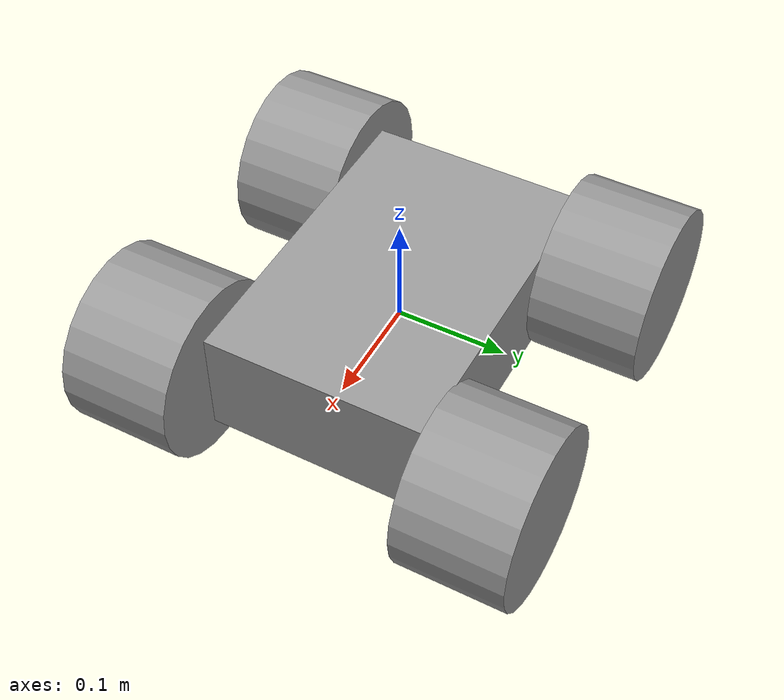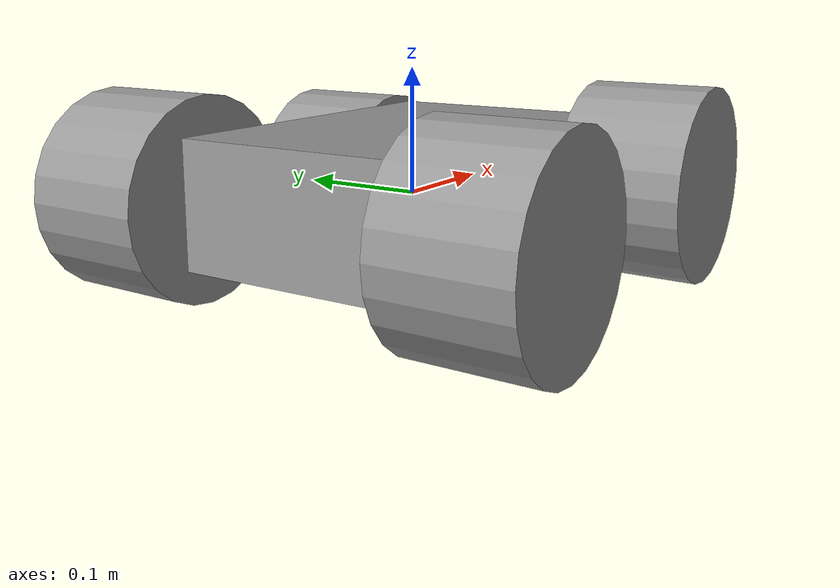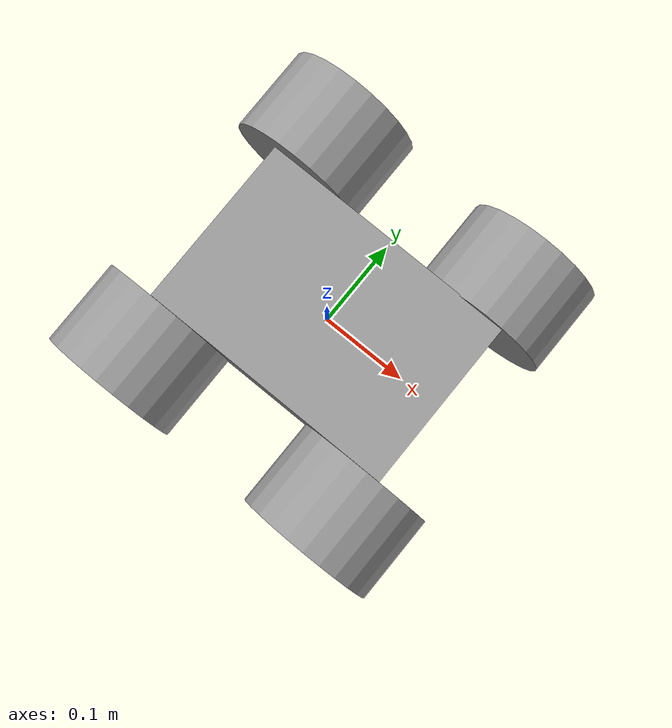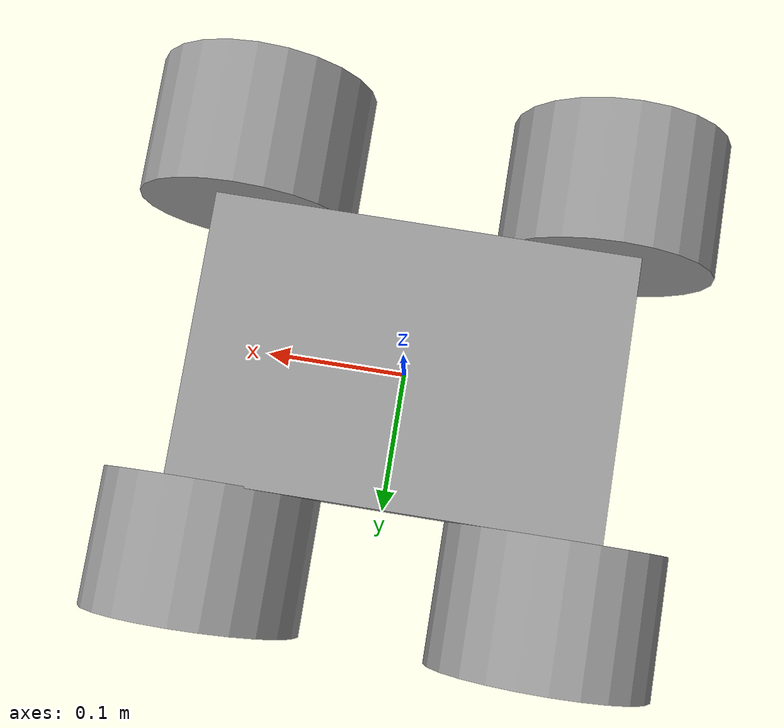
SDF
<?xml version='1.0'?>
<sdf version='1.6'>
  <model name='model_robot'>

    <link name='link_body'>
      <pose frame=''>-0.001376 0.000254 0.004397 0 -0 0</pose>
      <inertial>
        <mass>1</mass>
        <inertia>
          <ixx>0.166667</ixx>
          <ixy>0</ixy>
          <ixz>0</ixz>
          <iyy>0.166667</iyy>
          <iyz>0</iyz>
          <izz>0.166667</izz>
        </inertia>
        <pose frame=''>0 0 0 0 -0 0</pose>
      </inertial>
      <gravity>1</gravity>
      <self_collide>0</self_collide>
      <kinematic>0</kinematic>
      <visual name='visual'>
        <pose frame=''>0 0 0 0 -0 0</pose>
        <geometry>
          <box>
            <size>0.3 0.2 0.1</size>
          </box>
        </geometry>
        <material>
          <lighting>1</lighting>
          <script>
            <uri>file://media/materials/scripts/gazebo.material</uri>
            <name>Gazebo/Grey</name>
          </script>
          <ambient>0.3 0.3 0.3 1</ambient>
          <diffuse>0.7 0.7 0.7 1</diffuse>
          <specular>0.01 0.01 0.01 1</specular>
          <emissive>0 0 0 1</emissive>
          <shader type='vertex'>
            <normal_map>__default__</normal_map>
          </shader>
        </material>
        <cast_shadows>1</cast_shadows>
        <transparency>0</transparency>
      </visual>
      <collision name='collision'>
        <laser_retro>0</laser_retro>
        <max_contacts>10</max_contacts>
        <pose frame=''>0 0 0 0 -0 0</pose>
        <geometry>
          <box>
            <size>0.3 0.2 0.1</size>
          </box>
        </geometry>
        <surface>
          <friction>
            <ode>
              <mu>1</mu>
              <mu2>1</mu2>
              <fdir1>0 0 0</fdir1>
              <slip1>0</slip1>
              <slip2>0</slip2>
            </ode>
            <torsional>
              <coefficient>1</coefficient>
              <patch_radius>0</patch_radius>
              <surface_radius>0</surface_radius>
              <use_patch_radius>1</use_patch_radius>
              <ode>
                <slip>0</slip>
              </ode>
            </torsional>
          </friction>
          <bounce>
            <restitution_coefficient>0</restitution_coefficient>
            <threshold>1e+06</threshold>
          </bounce>
          <contact>
            <collide_without_contact>0</collide_without_contact>
            <collide_without_contact_bitmask>1</collide_without_contact_bitmask>
            <collide_bitmask>1</collide_bitmask>
            <ode>
              <soft_cfm>0</soft_cfm>
              <soft_erp>0.2</soft_erp>
              <kp>1e+13</kp>
              <kd>1</kd>
              <max_vel>0.01</max_vel>
              <min_depth>0</min_depth>
            </ode>
            <bullet>
              <split_impulse>1</split_impulse>
              <split_impulse_penetration_threshold>-0.01</split_impulse_penetration_threshold>
              <soft_cfm>0</soft_cfm>
              <soft_erp>0.2</soft_erp>
              <kp>1e+13</kp>
              <kd>1</kd>
            </bullet>
          </contact>
        </surface>
      </collision>
    </link>

    <link name='link_left_front_wheel'>
      <pose frame=''>-0.125241 0.150709 0.004397 1.5765 -0 0</pose>
      <inertial>
        <mass>1</mass>
        <inertia>
          <ixx>0.145833</ixx>
          <ixy>0</ixy>
          <ixz>0</ixz>
          <iyy>0.145833</iyy>
          <iyz>0</iyz>
          <izz>0.125</izz>
        </inertia>
        <pose frame=''>0 0 0 0 -0 0</pose>
      </inertial>
      <gravity>1</gravity>
      <self_collide>0</self_collide>
      <kinematic>0</kinematic>
      <visual name='visual'>
        <pose frame=''>0 0 0 0 -0 0</pose>
        <geometry>
          <cylinder>
            <radius>0.08</radius>
            <length>0.1</length>
          </cylinder>
        </geometry>
        <material>
          <lighting>1</lighting>
          <script>
            <uri>file://media/materials/scripts/gazebo.material</uri>
            <name>Gazebo/Grey</name>
          </script>
          <ambient>0.3 0.3 0.3 1</ambient>
          <diffuse>0.7 0.7 0.7 1</diffuse>
          <specular>0.01 0.01 0.01 1</specular>
          <emissive>0 0 0 1</emissive>
          <shader type='vertex'>
            <normal_map>__default__</normal_map>
          </shader>
        </material>
        <cast_shadows>1</cast_shadows>
        <transparency>0</transparency>
      </visual>
      <collision name='collision'>
        <laser_retro>0</laser_retro>
        <max_contacts>10</max_contacts>
        <pose frame=''>0 0 0 0 -0 0</pose>
        <geometry>
          <cylinder>
            <radius>0.08</radius>
            <length>0.1</length>
          </cylinder>
        </geometry>
        <surface>
          <friction>
            <ode>
              <mu>1</mu>
              <mu2>1</mu2>
              <fdir1>0 0 0</fdir1>
              <slip1>0</slip1>
              <slip2>0</slip2>
            </ode>
            <torsional>
              <coefficient>1</coefficient>
              <patch_radius>0</patch_radius>
              <surface_radius>0</surface_radius>
              <use_patch_radius>1</use_patch_radius>
              <ode>
                <slip>0</slip>
              </ode>
            </torsional>
          </friction>
          <bounce>
            <restitution_coefficient>0</restitution_coefficient>
            <threshold>1e+06</threshold>
          </bounce>
          <contact>
            <collide_without_contact>0</collide_without_contact>
            <collide_without_contact_bitmask>1</collide_without_contact_bitmask>
            <collide_bitmask>1</collide_bitmask>
            <ode>
              <soft_cfm>0</soft_cfm>
              <soft_erp>0.2</soft_erp>
              <kp>1e+13</kp>
              <kd>1</kd>
              <max_vel>0.01</max_vel>
              <min_depth>0</min_depth>
            </ode>
            <bullet>
              <split_impulse>1</split_impulse>
              <split_impulse_penetration_threshold>-0.01</split_impulse_penetration_threshold>
              <soft_cfm>0</soft_cfm>
              <soft_erp>0.2</soft_erp>
              <kp>1e+13</kp>
              <kd>1</kd>
            </bullet>
          </contact>
        </surface>
      </collision>
    </link>

    <link name='link_right_front_wheel'>
      <pose frame=''>0.126124 0.149444 -0.017586 1.5765 -0 0</pose>
      <inertial>
        <mass>1</mass>
        <inertia>
          <ixx>0.145833</ixx>
          <ixy>0</ixy>
          <ixz>0</ixz>
          <iyy>0.145833</iyy>
          <iyz>0</iyz>
          <izz>0.125</izz>
        </inertia>
        <pose frame=''>0 0 0 0 -0 0</pose>
      </inertial>
      <self_collide>0</self_collide>
      <kinematic>0</kinematic>
      <gravity>1</gravity>
      <visual name='visual'>
        <pose frame=''>0 0 0 0 -0 0</pose>
        <geometry>
          <cylinder>
            <radius>0.08</radius>
            <length>0.1</length>
          </cylinder>
        </geometry>
        <material>
          <lighting>1</lighting>
          <script>
            <uri>file://media/materials/scripts/gazebo.material</uri>
            <name>Gazebo/Grey</name>
          </script>
          <ambient>0.3 0.3 0.3 1</ambient>
          <diffuse>0.7 0.7 0.7 1</diffuse>
          <specular>0.01 0.01 0.01 1</specular>
          <emissive>0 0 0 1</emissive>
          <shader type='vertex'>
            <normal_map>__default__</normal_map>
          </shader>
        </material>
        <cast_shadows>1</cast_shadows>
        <transparency>0</transparency>
      </visual>
      <collision name='collision'>
        <laser_retro>0</laser_retro>
        <max_contacts>10</max_contacts>
        <pose frame=''>0 0 0 0 -0 0</pose>
        <geometry>
          <cylinder>
            <radius>0.08</radius>
            <length>0.1</length>
          </cylinder>
        </geometry>
        <surface>
          <friction>
            <ode>
              <mu>1</mu>
              <mu2>1</mu2>
              <fdir1>0 0 0</fdir1>
              <slip1>0</slip1>
              <slip2>0</slip2>
            </ode>
            <torsional>
              <coefficient>1</coefficient>
              <patch_radius>0</patch_radius>
              <surface_radius>0</surface_radius>
              <use_patch_radius>1</use_patch_radius>
              <ode>
                <slip>0</slip>
              </ode>
            </torsional>
          </friction>
          <bounce>
            <restitution_coefficient>0</restitution_coefficient>
            <threshold>1e+06</threshold>
          </bounce>
          <contact>
            <collide_without_contact>0</collide_without_contact>
            <collide_without_contact_bitmask>1</collide_without_contact_bitmask>
            <collide_bitmask>1</collide_bitmask>
            <ode>
              <soft_cfm>0</soft_cfm>
              <soft_erp>0.2</soft_erp>
              <kp>1e+13</kp>
              <kd>1</kd>
              <max_vel>0.01</max_vel>
              <min_depth>0</min_depth>
            </ode>
            <bullet>
              <split_impulse>1</split_impulse>
              <split_impulse_penetration_threshold>-0.01</split_impulse_penetration_threshold>
              <soft_cfm>0</soft_cfm>
              <soft_erp>0.2</soft_erp>
              <kp>1e+13</kp>
              <kd>1</kd>
            </bullet>
          </contact>
        </surface>
      </collision>
    </link>

    <link name='link_left_back_wheel'>
      <pose frame=''>0.132725 -0.150201 0.004397 1.5765 -0 0</pose>
      <inertial>
        <mass>1</mass>
        <inertia>
          <ixx>0.145833</ixx>
          <ixy>0</ixy>
          <ixz>0</ixz>
          <iyy>0.145833</iyy>
          <iyz>0</iyz>
          <izz>0.125</izz>
        </inertia>
        <pose frame=''>0 0 0 0 -0 0</pose>
      </inertial>
      <self_collide>0</self_collide>
      <kinematic>0</kinematic>
      <visual name='visual'>
        <pose frame=''>0 0 0 0 -0 0</pose>
        <geometry>
          <cylinder>
            <radius>0.08</radius>
            <length>0.1</length>
          </cylinder>
        </geometry>
        <material>
          <lighting>1</lighting>
          <script>
            <uri>file://media/materials/scripts/gazebo.material</uri>
            <name>Gazebo/Grey</name>
          </script>
          <ambient>0.3 0.3 0.3 1</ambient>
          <diffuse>0.7 0.7 0.7 1</diffuse>
          <specular>0.01 0.01 0.01 1</specular>
          <emissive>0 0 0 1</emissive>
          <shader type='vertex'>
            <normal_map>__default__</normal_map>
          </shader>
        </material>
        <cast_shadows>1</cast_shadows>
        <transparency>0</transparency>
      </visual>
      <collision name='collision'>
        <laser_retro>0</laser_retro>
        <max_contacts>10</max_contacts>
        <pose frame=''>0 0 0 0 -0 0</pose>
        <geometry>
          <cylinder>
            <radius>0.08</radius>
            <length>0.1</length>
          </cylinder>
        </geometry>
        <surface>
          <friction>
            <ode>
              <mu>1</mu>
              <mu2>1</mu2>
              <fdir1>0 0 0</fdir1>
              <slip1>0</slip1>
              <slip2>0</slip2>
            </ode>
            <torsional>
              <coefficient>1</coefficient>
              <patch_radius>0</patch_radius>
              <surface_radius>0</surface_radius>
              <use_patch_radius>1</use_patch_radius>
              <ode>
                <slip>0</slip>
              </ode>
            </torsional>
          </friction>
          <bounce>
            <restitution_coefficient>0</restitution_coefficient>
            <threshold>1e+06</threshold>
          </bounce>
          <contact>
            <collide_without_contact>0</collide_without_contact>
            <collide_without_contact_bitmask>1</collide_without_contact_bitmask>
            <collide_bitmask>1</collide_bitmask>
            <ode>
              <soft_cfm>0</soft_cfm>
              <soft_erp>0.2</soft_erp>
              <kp>1e+13</kp>
              <kd>1</kd>
              <max_vel>0.01</max_vel>
              <min_depth>0</min_depth>
            </ode>
            <bullet>
              <split_impulse>1</split_impulse>
              <split_impulse_penetration_threshold>-0.01</split_impulse_penetration_threshold>
              <soft_cfm>0</soft_cfm>
              <soft_erp>0.2</soft_erp>
              <kp>1e+13</kp>
              <kd>1</kd>
            </bullet>
          </contact>
        </surface>
      </collision>
    </link>

    <link name='link_right_back_wheel'>
      <pose frame=''>-0.132233 -0.150201 0.004397 1.5765 -0 0</pose>
      <inertial>
        <mass>1</mass>
        <inertia>
          <ixx>0.145833</ixx>
          <ixy>0</ixy>
          <ixz>0</ixz>
          <iyy>0.145833</iyy>
          <iyz>0</iyz>
          <izz>0.125</izz>
        </inertia>
        <pose frame=''>0 0 0 0 -0 0</pose>
      </inertial>
      <self_collide>0</self_collide>
      <kinematic>0</kinematic>
      <visual name='visual'>
        <pose frame=''>0 0 0 0 -0 0</pose>
        <geometry>
          <cylinder>
            <radius>0.08</radius>
            <length>0.1</length>
          </cylinder>
        </geometry>
        <material>
          <lighting>1</lighting>
          <script>
            <uri>file://media/materials/scripts/gazebo.material</uri>
            <name>Gazebo/Grey</name>
          </script>
          <ambient>0.3 0.3 0.3 1</ambient>
          <diffuse>0.7 0.7 0.7 1</diffuse>
          <specular>0.01 0.01 0.01 1</specular>
          <emissive>0 0 0 1</emissive>
          <shader type='vertex'>
            <normal_map>__default__</normal_map>
          </shader>
        </material>
        <cast_shadows>1</cast_shadows>
        <transparency>0</transparency>
      </visual>
      <collision name='collision'>
        <laser_retro>0</laser_retro>
        <max_contacts>10</max_contacts>
        <pose frame=''>0 0 0 0 -0 0</pose>
        <geometry>
          <cylinder>
            <radius>0.08</radius>
            <length>0.1</length>
          </cylinder>
        </geometry>
        <surface>
          <friction>
            <ode>
              <mu>1</mu>
              <mu2>1</mu2>
              <fdir1>0 0 0</fdir1>
              <slip1>0</slip1>
              <slip2>0</slip2>
            </ode>
            <torsional>
              <coefficient>1</coefficient>
              <patch_radius>0</patch_radius>
              <surface_radius>0</surface_radius>
              <use_patch_radius>1</use_patch_radius>
              <ode>
                <slip>0</slip>
              </ode>
            </torsional>
          </friction>
          <bounce>
            <restitution_coefficient>0</restitution_coefficient>
            <threshold>1e+06</threshold>
          </bounce>
          <contact>
            <collide_without_contact>0</collide_without_contact>
            <collide_without_contact_bitmask>1</collide_without_contact_bitmask>
            <collide_bitmask>1</collide_bitmask>
            <ode>
              <soft_cfm>0</soft_cfm>
              <soft_erp>0.2</soft_erp>
              <kp>1e+13</kp>
              <kd>1</kd>
              <max_vel>0.01</max_vel>
              <min_depth>0</min_depth>
            </ode>
            <bullet>
              <split_impulse>1</split_impulse>
              <split_impulse_penetration_threshold>-0.01</split_impulse_penetration_threshold>
              <soft_cfm>0</soft_cfm>
              <soft_erp>0.2</soft_erp>
              <kp>1e+13</kp>
              <kd>1</kd>
            </bullet>
          </contact>
        </surface>
      </collision>
    </link>

    <joint name='joint_left_front_wheel' type='revolute'>
      <parent>link_body</parent>
      <child>link_left_front_wheel</child>
      <pose frame=''>0 0 0 0 -0 0</pose>
      <axis>
        <xyz>1 0 0</xyz>
        <use_parent_model_frame>0</use_parent_model_frame>
        <limit>
          <lower>-1.79769e+308</lower>
          <upper>1.79769e+308</upper>
          <effort>-1</effort>
          <velocity>-1</velocity>
        </limit>
        <dynamics>
          <spring_reference>0</spring_reference>
          <spring_stiffness>0</spring_stiffness>
          <damping>0</damping>
        </dynamics>
      </axis>
      <physics>
        <ode>
          <limit>
            <cfm>0</cfm>
            <erp>0.2</erp>
          </limit>
          <suspension>
            <cfm>0</cfm>
            <erp>0.2</erp>
          </suspension>
        </ode>
      </physics>
    </joint>

    <joint name='joint_right_front_wheel' type='revolute'>
      <parent>link_body</parent>
      <child>link_right_front_wheel</child>
      <pose frame=''>0 0 0 0 -0 0</pose>
      <axis>
        <xyz>1 0 0</xyz>
        <use_parent_model_frame>0</use_parent_model_frame>
        <limit>
          <lower>-1.79769e+308</lower>
          <upper>1.79769e+308</upper>
          <effort>-1</effort>
          <velocity>-1</velocity>
        </limit>
        <dynamics>
          <spring_reference>0</spring_reference>
          <spring_stiffness>0</spring_stiffness>
          <damping>0</damping>
          <friction>0</friction>
        </dynamics>
      </axis>
      <physics>
        <ode>
          <limit>
            <cfm>0</cfm>
            <erp>0.2</erp>
          </limit>
          <suspension>
            <cfm>0</cfm>
            <erp>0.2</erp>
          </suspension>
        </ode>
      </physics>
    </joint>

    <joint name='joint_left_back_wheel' type='revolute'>
      <parent>link_body</parent>
      <child>link_left_back_wheel</child>
      <pose frame=''>0 0 0 0 -0 0</pose>
      <axis>
        <xyz>1 0 0</xyz>
        <use_parent_model_frame>0</use_parent_model_frame>
        <limit>
          <lower>-1.79769e+308</lower>
          <upper>1.79769e+308</upper>
          <effort>-1</effort>
          <velocity>-1</velocity>
        </limit>
        <dynamics>
          <spring_reference>0</spring_reference>
          <spring_stiffness>0</spring_stiffness>
          <damping>0</damping>
        </dynamics>
      </axis>
      <physics>
        <ode>
          <limit>
            <cfm>0</cfm>
            <erp>0.2</erp>
          </limit>
          <suspension>
            <cfm>0</cfm>
            <erp>0.2</erp>
          </suspension>
        </ode>
      </physics>
    </joint>

    <joint name='joint_right_back_wheel' type='revolute'>
      <parent>link_body</parent>
      <child>link_right_back_wheel</child>
      <pose frame=''>0 0 0 0 -0 0</pose>
      <axis>
        <xyz>1 0 0</xyz>
        <use_parent_model_frame>0</use_parent_model_frame>
        <limit>
          <lower>-1.79769e+308</lower>
          <upper>1.79769e+308</upper>
          <effort>-1</effort>
          <velocity>-1</velocity>
        </limit>
        <dynamics>
          <spring_reference>0</spring_reference>
          <spring_stiffness>0</spring_stiffness>
          <damping>0</damping>
        </dynamics>
      </axis>
      <physics>
        <ode>
          <limit>
            <cfm>0</cfm>
            <erp>0.2</erp>
          </limit>
          <suspension>
            <cfm>0</cfm>
            <erp>0.2</erp>
          </suspension>
        </ode>
      </physics>
    </joint>
    <static>0</static>
    <allow_auto_disable>1</allow_auto_disable>
  </model>
</sdf>
